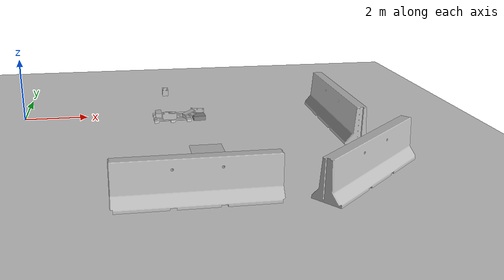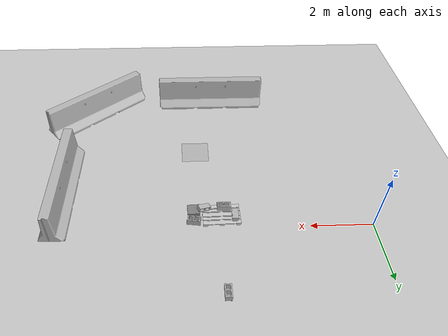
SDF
<sdf version="1.6">
 <world name="default">
  <model name="ground_plane">
   <static>1</static>
   <link name="link">
    <collision name="collision">
     <geometry><plane><normal>0 0 1</normal><size>100 100</size></plane></geometry>
     <surface>
      <contact><collide_bitmask>65535</collide_bitmask></contact>
      <friction><ode><mu>100</mu><mu2>50</mu2></ode></friction>
     </surface>
    </collision>
    <visual name="visual">
     <cast_shadows>0</cast_shadows>
     <geometry><plane><normal>0 0 1</normal><size>100 100</size></plane></geometry>
     <material>
      <script><uri>file://media/materials/scripts/gazebo.material</uri><name>Gazebo/Grey</name></script>
     </material>
    </visual>
   </link>
  </model>
  <model name="cinder_block_static_0">
   <link name="link">
    <inertial>
     <pose>0 0 0.1016 0 -0 0</pose>
     <mass>5</mass>
     <inertia>
      <ixx>0.028705</ixx>
      <ixy>0</ixy>
      <iyy>0.073708</iyy>
      <ixz>0</ixz>
      <iyz>0</iyz>
      <izz>0.06908</izz>
     </inertia>
    </inertial>
    <visual name="visual">
     <geometry><mesh><uri>model://cinder_block/meshes/cinder_block.dae</uri></mesh></geometry>
    </visual>
    <collision name="left">
     <pose>0 -0.08465 0.1016 0 -0 0</pose>
     <geometry><box><size>0.43495 0.0339 0.2032</size></box></geometry>
     <surface>
      <friction>
       <ode><mu>1</mu><mu2>1</mu2><fdir1>0 0 0</fdir1><slip1>0</slip1><slip2>0</slip2></ode>
       <torsional>
        <coefficient>1</coefficient>
        <patch_radius>0</patch_radius>
        <surface_radius>0</surface_radius>
        <use_patch_radius>1</use_patch_radius>
        <ode><slip>0</slip></ode>
       </torsional>
      </friction>
      <bounce><restitution_coefficient>0</restitution_coefficient><threshold>1e+06</threshold></bounce>
      <contact>
       <collide_without_contact>0</collide_without_contact>
       <collide_without_contact_bitmask>1</collide_without_contact_bitmask>
       <collide_bitmask>1</collide_bitmask>
       <ode>
        <soft_cfm>0</soft_cfm>
        <soft_erp>0.2</soft_erp>
        <kp>1e+13</kp>
        <kd>1</kd>
        <max_vel>0.1</max_vel>
        <min_depth>0.001</min_depth>
       </ode>
       <bullet>
        <split_impulse>1</split_impulse>
        <split_impulse_penetration_threshold>-0.01</split_impulse_penetration_threshold>
        <soft_cfm>0</soft_cfm>
        <soft_erp>0.2</soft_erp>
        <kp>1e+13</kp>
        <kd>1</kd>
       </bullet>
      </contact>
     </surface>
    </collision>
    <collision name="right">
     <pose>0 0.08465 0.1016 0 -0 0</pose>
     <geometry><box><size>0.43495 0.0339 0.2032</size></box></geometry>
     <surface>
      <friction>
       <ode><mu>1</mu><mu2>1</mu2><fdir1>0 0 0</fdir1><slip1>0</slip1><slip2>0</slip2></ode>
       <torsional>
        <coefficient>1</coefficient>
        <patch_radius>0</patch_radius>
        <surface_radius>0</surface_radius>
        <use_patch_radius>1</use_patch_radius>
        <ode><slip>0</slip></ode>
       </torsional>
      </friction>
      <bounce><restitution_coefficient>0</restitution_coefficient><threshold>1e+06</threshold></bounce>
      <contact>
       <collide_without_contact>0</collide_without_contact>
       <collide_without_contact_bitmask>1</collide_without_contact_bitmask>
       <collide_bitmask>1</collide_bitmask>
       <ode>
        <soft_cfm>0</soft_cfm>
        <soft_erp>0.2</soft_erp>
        <kp>1e+13</kp>
        <kd>1</kd>
        <max_vel>0.1</max_vel>
        <min_depth>0.001</min_depth>
       </ode>
       <bullet>
        <split_impulse>1</split_impulse>
        <split_impulse_penetration_threshold>-0.01</split_impulse_penetration_threshold>
        <soft_cfm>0</soft_cfm>
        <soft_erp>0.2</soft_erp>
        <kp>1e+13</kp>
        <kd>1</kd>
       </bullet>
      </contact>
     </surface>
    </collision>
    <collision name="front">
     <pose>0.18625 0 0.1016 0 -0 0</pose>
     <geometry><box><size>0.0339 0.1354 0.203</size></box></geometry>
     <surface>
      <friction>
       <ode><mu>1</mu><mu2>1</mu2><fdir1>0 0 0</fdir1><slip1>0</slip1><slip2>0</slip2></ode>
       <torsional>
        <coefficient>1</coefficient>
        <patch_radius>0</patch_radius>
        <surface_radius>0</surface_radius>
        <use_patch_radius>1</use_patch_radius>
        <ode><slip>0</slip></ode>
       </torsional>
      </friction>
      <bounce><restitution_coefficient>0</restitution_coefficient><threshold>1e+06</threshold></bounce>
      <contact>
       <collide_without_contact>0</collide_without_contact>
       <collide_without_contact_bitmask>1</collide_without_contact_bitmask>
       <collide_bitmask>1</collide_bitmask>
       <ode>
        <soft_cfm>0</soft_cfm>
        <soft_erp>0.2</soft_erp>
        <kp>1e+13</kp>
        <kd>1</kd>
        <max_vel>0.1</max_vel>
        <min_depth>0.001</min_depth>
       </ode>
       <bullet>
        <split_impulse>1</split_impulse>
        <split_impulse_penetration_threshold>-0.01</split_impulse_penetration_threshold>
        <soft_cfm>0</soft_cfm>
        <soft_erp>0.2</soft_erp>
        <kp>1e+13</kp>
        <kd>1</kd>
       </bullet>
      </contact>
     </surface>
    </collision>
    <collision name="middle">
     <pose>0 0 0.1016 0 -0 0</pose>
     <geometry><box><size>0.0339 0.1354 0.203</size></box></geometry>
     <surface>
      <friction>
       <ode><mu>1</mu><mu2>1</mu2><fdir1>0 0 0</fdir1><slip1>0</slip1><slip2>0</slip2></ode>
       <torsional>
        <coefficient>1</coefficient>
        <patch_radius>0</patch_radius>
        <surface_radius>0</surface_radius>
        <use_patch_radius>1</use_patch_radius>
        <ode><slip>0</slip></ode>
       </torsional>
      </friction>
      <bounce><restitution_coefficient>0</restitution_coefficient><threshold>1e+06</threshold></bounce>
      <contact>
       <collide_without_contact>0</collide_without_contact>
       <collide_without_contact_bitmask>1</collide_without_contact_bitmask>
       <collide_bitmask>1</collide_bitmask>
       <ode>
        <soft_cfm>0</soft_cfm>
        <soft_erp>0.2</soft_erp>
        <kp>1e+13</kp>
        <kd>1</kd>
        <max_vel>0.1</max_vel>
        <min_depth>0.001</min_depth>
       </ode>
       <bullet>
        <split_impulse>1</split_impulse>
        <split_impulse_penetration_threshold>-0.01</split_impulse_penetration_threshold>
        <soft_cfm>0</soft_cfm>
        <soft_erp>0.2</soft_erp>
        <kp>1e+13</kp>
        <kd>1</kd>
       </bullet>
      </contact>
     </surface>
    </collision>
    <collision name="back">
     <pose>-0.18625 0 0.1016 0 -0 0</pose>
     <geometry><box><size>0.0339 0.1354 0.203</size></box></geometry>
     <surface>
      <friction>
       <ode><mu>1</mu><mu2>1</mu2><fdir1>0 0 0</fdir1><slip1>0</slip1><slip2>0</slip2></ode>
       <torsional>
        <coefficient>1</coefficient>
        <patch_radius>0</patch_radius>
        <surface_radius>0</surface_radius>
        <use_patch_radius>1</use_patch_radius>
        <ode><slip>0</slip></ode>
       </torsional>
      </friction>
      <bounce><restitution_coefficient>0</restitution_coefficient><threshold>1e+06</threshold></bounce>
      <contact>
       <collide_without_contact>0</collide_without_contact>
       <collide_without_contact_bitmask>1</collide_without_contact_bitmask>
       <collide_bitmask>1</collide_bitmask>
       <ode>
        <soft_cfm>0</soft_cfm>
        <soft_erp>0.2</soft_erp>
        <kp>1e+13</kp>
        <kd>1</kd>
        <max_vel>0.1</max_vel>
        <min_depth>0.001</min_depth>
       </ode>
       <bullet>
        <split_impulse>1</split_impulse>
        <split_impulse_penetration_threshold>-0.01</split_impulse_penetration_threshold>
        <soft_cfm>0</soft_cfm>
        <soft_erp>0.2</soft_erp>
        <kp>1e+13</kp>
        <kd>1</kd>
       </bullet>
      </contact>
     </surface>
    </collision>
   </link>
   <static>1</static>
   <pose>4.77224 2.27227 0 0 -0 1.55672</pose>
  </model>
  <model name="checkerboard_plane">
   <static>1</static>
   <link name="link">
    <visual name="visual">
     <geometry>
      <mesh><scale>0.48 0.48 0.48</scale><uri>model://checkerboard_plane/meshes/checkerboard_plane.dae</uri></mesh>
     </geometry>
    </visual>
   </link>
   <pose>5.51191 -3.50404 0.005577 0 -0 0</pose>
  </model>
  <model name="euro_pallet_static_0">
   <link name="link">
    <inertial>
     <mass>20</mass>
     <inertia><ixx>2.43</ixx><ixy>0</ixy><ixz>0</ixz><iyy>1.1</iyy><iyz>0</iyz><izz>3.47</izz></inertia>
    </inertial>
    <visual name="visual">
     <pose>0 0 0.05 0 -0 0</pose>
     <geometry><mesh><uri>model://euro_pallet/meshes/pallet.dae</uri><scale>0.1 0.1 0.1</scale></mesh></geometry>
    </visual>
    <collision name="collision">
     <pose>0 0 0.05 0 -0 0</pose>
     <geometry>
      <mesh><uri>~/.gazebo/models/euro_pallet/meshes/pallet.dae</uri><scale>0.1 0.1 0.1</scale></mesh>
     </geometry>
     <surface>
      <friction>
       <ode><mu>1</mu><mu2>1</mu2><fdir1>0 0 0</fdir1><slip1>0</slip1><slip2>0</slip2></ode>
       <torsional>
        <coefficient>1</coefficient>
        <patch_radius>0</patch_radius>
        <surface_radius>0</surface_radius>
        <use_patch_radius>1</use_patch_radius>
        <ode><slip>0</slip></ode>
       </torsional>
      </friction>
      <bounce><restitution_coefficient>0</restitution_coefficient><threshold>1e+06</threshold></bounce>
      <contact>
       <collide_without_contact>0</collide_without_contact>
       <collide_without_contact_bitmask>1</collide_without_contact_bitmask>
       <collide_bitmask>1</collide_bitmask>
       <ode>
        <soft_cfm>0</soft_cfm>
        <soft_erp>0.2</soft_erp>
        <kp>1e+13</kp>
        <kd>1</kd>
        <max_vel>0.01</max_vel>
        <min_depth>0</min_depth>
       </ode>
       <bullet>
        <split_impulse>1</split_impulse>
        <split_impulse_penetration_threshold>-0.01</split_impulse_penetration_threshold>
        <soft_cfm>0</soft_cfm>
        <soft_erp>0.2</soft_erp>
        <kp>1e+13</kp>
        <kd>1</kd>
       </bullet>
      </contact>
     </surface>
    </collision>
   </link>
   <static>1</static>
   <pose>4.76822 -0.50039 0 0 -0 1.59773</pose>
  </model>
  <model name="cinder_block_wide_static_1">
   <link name="link">
    <inertial>
     <pose>0 0 0.071438 0 -0 0</pose>
     <mass>5</mass>
     <inertia>
      <ixx>0.0681466</ixx>
      <ixy>0</ixy>
      <iyy>0.0681466</iyy>
      <ixz>0</ixz>
      <iyz>0</iyz>
      <izz>0.124808</izz>
     </inertia>
    </inertial>
    <visual name="visual">
     <geometry><mesh><uri>model://cinder_block_wide/meshes/cinder_block_wide.dae</uri></mesh></geometry>
    </visual>
    <collision name="top">
     <pose>0 0 0.130175 0 -0 0</pose>
     <geometry><box><size>0.387354 0.387354 0.0254</size></box></geometry>
     <surface>
      <friction>
       <ode><mu>1</mu><mu2>1</mu2><fdir1>0 0 0</fdir1><slip1>0</slip1><slip2>0</slip2></ode>
       <torsional>
        <coefficient>1</coefficient>
        <patch_radius>0</patch_radius>
        <surface_radius>0</surface_radius>
        <use_patch_radius>1</use_patch_radius>
        <ode><slip>0</slip></ode>
       </torsional>
      </friction>
      <bounce><restitution_coefficient>0</restitution_coefficient><threshold>1e+06</threshold></bounce>
      <contact>
       <collide_without_contact>0</collide_without_contact>
       <collide_without_contact_bitmask>1</collide_without_contact_bitmask>
       <collide_bitmask>1</collide_bitmask>
       <ode>
        <soft_cfm>0</soft_cfm>
        <soft_erp>0.2</soft_erp>
        <kp>1e+13</kp>
        <kd>1</kd>
        <max_vel>0.1</max_vel>
        <min_depth>0.001</min_depth>
       </ode>
       <bullet>
        <split_impulse>1</split_impulse>
        <split_impulse_penetration_threshold>-0.01</split_impulse_penetration_threshold>
        <soft_cfm>0</soft_cfm>
        <soft_erp>0.2</soft_erp>
        <kp>1e+13</kp>
        <kd>1</kd>
       </bullet>
      </contact>
     </surface>
    </collision>
    <collision name="bottom">
     <pose>0 0 0.0127 0 -0 0</pose>
     <geometry><box><size>0.387354 0.387354 0.0254</size></box></geometry>
     <surface>
      <friction>
       <ode><mu>1</mu><mu2>1</mu2><fdir1>0 0 0</fdir1><slip1>0</slip1><slip2>0</slip2></ode>
       <torsional>
        <coefficient>1</coefficient>
        <patch_radius>0</patch_radius>
        <surface_radius>0</surface_radius>
        <use_patch_radius>1</use_patch_radius>
        <ode><slip>0</slip></ode>
       </torsional>
      </friction>
      <bounce><restitution_coefficient>0</restitution_coefficient><threshold>1e+06</threshold></bounce>
      <contact>
       <collide_without_contact>0</collide_without_contact>
       <collide_without_contact_bitmask>1</collide_without_contact_bitmask>
       <collide_bitmask>1</collide_bitmask>
       <ode>
        <soft_cfm>0</soft_cfm>
        <soft_erp>0.2</soft_erp>
        <kp>1e+13</kp>
        <kd>1</kd>
        <max_vel>0.1</max_vel>
        <min_depth>0.001</min_depth>
       </ode>
       <bullet>
        <split_impulse>1</split_impulse>
        <split_impulse_penetration_threshold>-0.01</split_impulse_penetration_threshold>
        <soft_cfm>0</soft_cfm>
        <soft_erp>0.2</soft_erp>
        <kp>1e+13</kp>
        <kd>1</kd>
       </bullet>
      </contact>
     </surface>
    </collision>
    <collision name="left">
     <pose>0 -0.183355 0.071438 0 -0 0</pose>
     <geometry><box><size>0.387354 0.020643 0.092075</size></box></geometry>
     <surface>
      <friction>
       <ode><mu>1</mu><mu2>1</mu2><fdir1>0 0 0</fdir1><slip1>0</slip1><slip2>0</slip2></ode>
       <torsional>
        <coefficient>1</coefficient>
        <patch_radius>0</patch_radius>
        <surface_radius>0</surface_radius>
        <use_patch_radius>1</use_patch_radius>
        <ode><slip>0</slip></ode>
       </torsional>
      </friction>
      <bounce><restitution_coefficient>0</restitution_coefficient><threshold>1e+06</threshold></bounce>
      <contact>
       <collide_without_contact>0</collide_without_contact>
       <collide_without_contact_bitmask>1</collide_without_contact_bitmask>
       <collide_bitmask>1</collide_bitmask>
       <ode>
        <soft_cfm>0</soft_cfm>
        <soft_erp>0.2</soft_erp>
        <kp>1e+13</kp>
        <kd>1</kd>
        <max_vel>0.1</max_vel>
        <min_depth>0.001</min_depth>
       </ode>
       <bullet>
        <split_impulse>1</split_impulse>
        <split_impulse_penetration_threshold>-0.01</split_impulse_penetration_threshold>
        <soft_cfm>0</soft_cfm>
        <soft_erp>0.2</soft_erp>
        <kp>1e+13</kp>
        <kd>1</kd>
       </bullet>
      </contact>
     </surface>
    </collision>
    <collision name="right">
     <pose>0 0.183355 0.071438 0 -0 0</pose>
     <geometry><box><size>0.387354 0.020643 0.092075</size></box></geometry>
     <surface>
      <friction>
       <ode><mu>1</mu><mu2>1</mu2><fdir1>0 0 0</fdir1><slip1>0</slip1><slip2>0</slip2></ode>
       <torsional>
        <coefficient>1</coefficient>
        <patch_radius>0</patch_radius>
        <surface_radius>0</surface_radius>
        <use_patch_radius>1</use_patch_radius>
        <ode><slip>0</slip></ode>
       </torsional>
      </friction>
      <bounce><restitution_coefficient>0</restitution_coefficient><threshold>1e+06</threshold></bounce>
      <contact>
       <collide_without_contact>0</collide_without_contact>
       <collide_without_contact_bitmask>1</collide_without_contact_bitmask>
       <collide_bitmask>1</collide_bitmask>
       <ode>
        <soft_cfm>0</soft_cfm>
        <soft_erp>0.2</soft_erp>
        <kp>1e+13</kp>
        <kd>1</kd>
        <max_vel>0.1</max_vel>
        <min_depth>0.001</min_depth>
       </ode>
       <bullet>
        <split_impulse>1</split_impulse>
        <split_impulse_penetration_threshold>-0.01</split_impulse_penetration_threshold>
        <soft_cfm>0</soft_cfm>
        <soft_erp>0.2</soft_erp>
        <kp>1e+13</kp>
        <kd>1</kd>
       </bullet>
      </contact>
     </surface>
    </collision>
    <collision name="middle">
     <pose>0 0 0.071438 0 -0 0</pose>
     <geometry><box><size>0.387354 0.0254 0.092075</size></box></geometry>
     <surface>
      <friction>
       <ode><mu>1</mu><mu2>1</mu2><fdir1>0 0 0</fdir1><slip1>0</slip1><slip2>0</slip2></ode>
       <torsional>
        <coefficient>1</coefficient>
        <patch_radius>0</patch_radius>
        <surface_radius>0</surface_radius>
        <use_patch_radius>1</use_patch_radius>
        <ode><slip>0</slip></ode>
       </torsional>
      </friction>
      <bounce><restitution_coefficient>0</restitution_coefficient><threshold>1e+06</threshold></bounce>
      <contact>
       <collide_without_contact>0</collide_without_contact>
       <collide_without_contact_bitmask>1</collide_without_contact_bitmask>
       <collide_bitmask>1</collide_bitmask>
       <ode>
        <soft_cfm>0</soft_cfm>
        <soft_erp>0.2</soft_erp>
        <kp>1e+13</kp>
        <kd>1</kd>
        <max_vel>0.1</max_vel>
        <min_depth>0.001</min_depth>
       </ode>
       <bullet>
        <split_impulse>1</split_impulse>
        <split_impulse_penetration_threshold>-0.01</split_impulse_penetration_threshold>
        <soft_cfm>0</soft_cfm>
        <soft_erp>0.2</soft_erp>
        <kp>1e+13</kp>
        <kd>1</kd>
       </bullet>
      </contact>
     </surface>
    </collision>
   </link>
   <static>1</static>
   <pose>5.64827 -0.671428 0 0 -0 0.049763</pose>
  </model>
  <model name="cinder_block_static_1">
   <link name="link">
    <inertial>
     <pose>0 0 0.1016 0 -0 0</pose>
     <mass>5</mass>
     <inertia>
      <ixx>0.028705</ixx>
      <ixy>0</ixy>
      <iyy>0.073708</iyy>
      <ixz>0</ixz>
      <iyz>0</iyz>
      <izz>0.06908</izz>
     </inertia>
    </inertial>
    <visual name="visual">
     <geometry><mesh><uri>model://cinder_block/meshes/cinder_block.dae</uri></mesh></geometry>
    </visual>
    <collision name="left">
     <pose>0 -0.08465 0.1016 0 -0 0</pose>
     <geometry><box><size>0.43495 0.0339 0.2032</size></box></geometry>
     <surface>
      <friction>
       <ode><mu>1</mu><mu2>1</mu2><fdir1>0 0 0</fdir1><slip1>0</slip1><slip2>0</slip2></ode>
       <torsional>
        <coefficient>1</coefficient>
        <patch_radius>0</patch_radius>
        <surface_radius>0</surface_radius>
        <use_patch_radius>1</use_patch_radius>
        <ode><slip>0</slip></ode>
       </torsional>
      </friction>
      <bounce><restitution_coefficient>0</restitution_coefficient><threshold>1e+06</threshold></bounce>
      <contact>
       <collide_without_contact>0</collide_without_contact>
       <collide_without_contact_bitmask>1</collide_without_contact_bitmask>
       <collide_bitmask>1</collide_bitmask>
       <ode>
        <soft_cfm>0</soft_cfm>
        <soft_erp>0.2</soft_erp>
        <kp>1e+13</kp>
        <kd>1</kd>
        <max_vel>0.1</max_vel>
        <min_depth>0.001</min_depth>
       </ode>
       <bullet>
        <split_impulse>1</split_impulse>
        <split_impulse_penetration_threshold>-0.01</split_impulse_penetration_threshold>
        <soft_cfm>0</soft_cfm>
        <soft_erp>0.2</soft_erp>
        <kp>1e+13</kp>
        <kd>1</kd>
       </bullet>
      </contact>
     </surface>
    </collision>
    <collision name="right">
     <pose>0 0.08465 0.1016 0 -0 0</pose>
     <geometry><box><size>0.43495 0.0339 0.2032</size></box></geometry>
     <surface>
      <friction>
       <ode><mu>1</mu><mu2>1</mu2><fdir1>0 0 0</fdir1><slip1>0</slip1><slip2>0</slip2></ode>
       <torsional>
        <coefficient>1</coefficient>
        <patch_radius>0</patch_radius>
        <surface_radius>0</surface_radius>
        <use_patch_radius>1</use_patch_radius>
        <ode><slip>0</slip></ode>
       </torsional>
      </friction>
      <bounce><restitution_coefficient>0</restitution_coefficient><threshold>1e+06</threshold></bounce>
      <contact>
       <collide_without_contact>0</collide_without_contact>
       <collide_without_contact_bitmask>1</collide_without_contact_bitmask>
       <collide_bitmask>1</collide_bitmask>
       <ode>
        <soft_cfm>0</soft_cfm>
        <soft_erp>0.2</soft_erp>
        <kp>1e+13</kp>
        <kd>1</kd>
        <max_vel>0.1</max_vel>
        <min_depth>0.001</min_depth>
       </ode>
       <bullet>
        <split_impulse>1</split_impulse>
        <split_impulse_penetration_threshold>-0.01</split_impulse_penetration_threshold>
        <soft_cfm>0</soft_cfm>
        <soft_erp>0.2</soft_erp>
        <kp>1e+13</kp>
        <kd>1</kd>
       </bullet>
      </contact>
     </surface>
    </collision>
    <collision name="front">
     <pose>0.18625 0 0.1016 0 -0 0</pose>
     <geometry><box><size>0.0339 0.1354 0.203</size></box></geometry>
     <surface>
      <friction>
       <ode><mu>1</mu><mu2>1</mu2><fdir1>0 0 0</fdir1><slip1>0</slip1><slip2>0</slip2></ode>
       <torsional>
        <coefficient>1</coefficient>
        <patch_radius>0</patch_radius>
        <surface_radius>0</surface_radius>
        <use_patch_radius>1</use_patch_radius>
        <ode><slip>0</slip></ode>
       </torsional>
      </friction>
      <bounce><restitution_coefficient>0</restitution_coefficient><threshold>1e+06</threshold></bounce>
      <contact>
       <collide_without_contact>0</collide_without_contact>
       <collide_without_contact_bitmask>1</collide_without_contact_bitmask>
       <collide_bitmask>1</collide_bitmask>
       <ode>
        <soft_cfm>0</soft_cfm>
        <soft_erp>0.2</soft_erp>
        <kp>1e+13</kp>
        <kd>1</kd>
        <max_vel>0.1</max_vel>
        <min_depth>0.001</min_depth>
       </ode>
       <bullet>
        <split_impulse>1</split_impulse>
        <split_impulse_penetration_threshold>-0.01</split_impulse_penetration_threshold>
        <soft_cfm>0</soft_cfm>
        <soft_erp>0.2</soft_erp>
        <kp>1e+13</kp>
        <kd>1</kd>
       </bullet>
      </contact>
     </surface>
    </collision>
    <collision name="middle">
     <pose>0 0 0.1016 0 -0 0</pose>
     <geometry><box><size>0.0339 0.1354 0.203</size></box></geometry>
     <surface>
      <friction>
       <ode><mu>1</mu><mu2>1</mu2><fdir1>0 0 0</fdir1><slip1>0</slip1><slip2>0</slip2></ode>
       <torsional>
        <coefficient>1</coefficient>
        <patch_radius>0</patch_radius>
        <surface_radius>0</surface_radius>
        <use_patch_radius>1</use_patch_radius>
        <ode><slip>0</slip></ode>
       </torsional>
      </friction>
      <bounce><restitution_coefficient>0</restitution_coefficient><threshold>1e+06</threshold></bounce>
      <contact>
       <collide_without_contact>0</collide_without_contact>
       <collide_without_contact_bitmask>1</collide_without_contact_bitmask>
       <collide_bitmask>1</collide_bitmask>
       <ode>
        <soft_cfm>0</soft_cfm>
        <soft_erp>0.2</soft_erp>
        <kp>1e+13</kp>
        <kd>1</kd>
        <max_vel>0.1</max_vel>
        <min_depth>0.001</min_depth>
       </ode>
       <bullet>
        <split_impulse>1</split_impulse>
        <split_impulse_penetration_threshold>-0.01</split_impulse_penetration_threshold>
        <soft_cfm>0</soft_cfm>
        <soft_erp>0.2</soft_erp>
        <kp>1e+13</kp>
        <kd>1</kd>
       </bullet>
      </contact>
     </surface>
    </collision>
    <collision name="back">
     <pose>-0.18625 0 0.1016 0 -0 0</pose>
     <geometry><box><size>0.0339 0.1354 0.203</size></box></geometry>
     <surface>
      <friction>
       <ode><mu>1</mu><mu2>1</mu2><fdir1>0 0 0</fdir1><slip1>0</slip1><slip2>0</slip2></ode>
       <torsional>
        <coefficient>1</coefficient>
        <patch_radius>0</patch_radius>
        <surface_radius>0</surface_radius>
        <use_patch_radius>1</use_patch_radius>
        <ode><slip>0</slip></ode>
       </torsional>
      </friction>
      <bounce><restitution_coefficient>0</restitution_coefficient><threshold>1e+06</threshold></bounce>
      <contact>
       <collide_without_contact>0</collide_without_contact>
       <collide_without_contact_bitmask>1</collide_without_contact_bitmask>
       <collide_bitmask>1</collide_bitmask>
       <ode>
        <soft_cfm>0</soft_cfm>
        <soft_erp>0.2</soft_erp>
        <kp>1e+13</kp>
        <kd>1</kd>
        <max_vel>0.1</max_vel>
        <min_depth>0.001</min_depth>
       </ode>
       <bullet>
        <split_impulse>1</split_impulse>
        <split_impulse_penetration_threshold>-0.01</split_impulse_penetration_threshold>
        <soft_cfm>0</soft_cfm>
        <soft_erp>0.2</soft_erp>
        <kp>1e+13</kp>
        <kd>1</kd>
       </bullet>
      </contact>
     </surface>
    </collision>
   </link>
   <static>1</static>
   <pose>5.64231 -0.251046 0 0 0 -0.147625</pose>
  </model>
  <model name="cinder_block_2_static_2">
   <link name="link">
    <inertial>
     <pose>0 0 0.071438 0 -0 0</pose>
     <mass>5</mass>
     <inertia>
      <ixx>0.06908</ixx>
      <ixy>0</ixy>
      <iyy>0.028705</iyy>
      <ixz>0</ixz>
      <iyz>0</iyz>
      <izz>0.073708</izz>
     </inertia>
    </inertial>
    <visual name="visual">
     <geometry><mesh><uri>model://cinder_block_2/meshes/cinder_block.dae</uri></mesh></geometry>
    </visual>
    <collision name="top">
     <pose>0 0 0.130175 0 -0 0</pose>
     <geometry><box><size>0.19368 0.396875 0.0254</size></box></geometry>
     <surface>
      <friction>
       <ode><mu>1</mu><mu2>1</mu2><fdir1>0 0 0</fdir1><slip1>0</slip1><slip2>0</slip2></ode>
       <torsional>
        <coefficient>1</coefficient>
        <patch_radius>0</patch_radius>
        <surface_radius>0</surface_radius>
        <use_patch_radius>1</use_patch_radius>
        <ode><slip>0</slip></ode>
       </torsional>
      </friction>
      <bounce><restitution_coefficient>0</restitution_coefficient><threshold>1e+06</threshold></bounce>
      <contact>
       <collide_without_contact>0</collide_without_contact>
       <collide_without_contact_bitmask>1</collide_without_contact_bitmask>
       <collide_bitmask>1</collide_bitmask>
       <ode>
        <soft_cfm>0</soft_cfm>
        <soft_erp>0.2</soft_erp>
        <kp>1e+13</kp>
        <kd>1</kd>
        <max_vel>0.1</max_vel>
        <min_depth>0.001</min_depth>
       </ode>
       <bullet>
        <split_impulse>1</split_impulse>
        <split_impulse_penetration_threshold>-0.01</split_impulse_penetration_threshold>
        <soft_cfm>0</soft_cfm>
        <soft_erp>0.2</soft_erp>
        <kp>1e+13</kp>
        <kd>1</kd>
       </bullet>
      </contact>
     </surface>
    </collision>
    <collision name="bottom">
     <pose>0 0 0.0127 0 -0 0</pose>
     <geometry><box><size>0.19368 0.396875 0.0254</size></box></geometry>
     <surface>
      <friction>
       <ode><mu>1</mu><mu2>1</mu2><fdir1>0 0 0</fdir1><slip1>0</slip1><slip2>0</slip2></ode>
       <torsional>
        <coefficient>1</coefficient>
        <patch_radius>0</patch_radius>
        <surface_radius>0</surface_radius>
        <use_patch_radius>1</use_patch_radius>
        <ode><slip>0</slip></ode>
       </torsional>
      </friction>
      <bounce><restitution_coefficient>0</restitution_coefficient><threshold>1e+06</threshold></bounce>
      <contact>
       <collide_without_contact>0</collide_without_contact>
       <collide_without_contact_bitmask>1</collide_without_contact_bitmask>
       <collide_bitmask>1</collide_bitmask>
       <ode>
        <soft_cfm>0</soft_cfm>
        <soft_erp>0.2</soft_erp>
        <kp>1e+13</kp>
        <kd>1</kd>
        <max_vel>0.1</max_vel>
        <min_depth>0.001</min_depth>
       </ode>
       <bullet>
        <split_impulse>1</split_impulse>
        <split_impulse_penetration_threshold>-0.01</split_impulse_penetration_threshold>
        <soft_cfm>0</soft_cfm>
        <soft_erp>0.2</soft_erp>
        <kp>1e+13</kp>
        <kd>1</kd>
       </bullet>
      </contact>
     </surface>
    </collision>
    <collision name="left">
     <pose>0 -0.185738 0.071438 0 -0 0</pose>
     <geometry><box><size>0.19368 0.0254 0.092075</size></box></geometry>
     <surface>
      <friction>
       <ode><mu>1</mu><mu2>1</mu2><fdir1>0 0 0</fdir1><slip1>0</slip1><slip2>0</slip2></ode>
       <torsional>
        <coefficient>1</coefficient>
        <patch_radius>0</patch_radius>
        <surface_radius>0</surface_radius>
        <use_patch_radius>1</use_patch_radius>
        <ode><slip>0</slip></ode>
       </torsional>
      </friction>
      <bounce><restitution_coefficient>0</restitution_coefficient><threshold>1e+06</threshold></bounce>
      <contact>
       <collide_without_contact>0</collide_without_contact>
       <collide_without_contact_bitmask>1</collide_without_contact_bitmask>
       <collide_bitmask>1</collide_bitmask>
       <ode>
        <soft_cfm>0</soft_cfm>
        <soft_erp>0.2</soft_erp>
        <kp>1e+13</kp>
        <kd>1</kd>
        <max_vel>0.1</max_vel>
        <min_depth>0.001</min_depth>
       </ode>
       <bullet>
        <split_impulse>1</split_impulse>
        <split_impulse_penetration_threshold>-0.01</split_impulse_penetration_threshold>
        <soft_cfm>0</soft_cfm>
        <soft_erp>0.2</soft_erp>
        <kp>1e+13</kp>
        <kd>1</kd>
       </bullet>
      </contact>
     </surface>
    </collision>
    <collision name="middle">
     <pose>0 0 0.071438 0 -0 0</pose>
     <geometry><box><size>0.19368 0.0254 0.092075</size></box></geometry>
     <surface>
      <friction>
       <ode><mu>1</mu><mu2>1</mu2><fdir1>0 0 0</fdir1><slip1>0</slip1><slip2>0</slip2></ode>
       <torsional>
        <coefficient>1</coefficient>
        <patch_radius>0</patch_radius>
        <surface_radius>0</surface_radius>
        <use_patch_radius>1</use_patch_radius>
        <ode><slip>0</slip></ode>
       </torsional>
      </friction>
      <bounce><restitution_coefficient>0</restitution_coefficient><threshold>1e+06</threshold></bounce>
      <contact>
       <collide_without_contact>0</collide_without_contact>
       <collide_without_contact_bitmask>1</collide_without_contact_bitmask>
       <collide_bitmask>1</collide_bitmask>
       <ode>
        <soft_cfm>0</soft_cfm>
        <soft_erp>0.2</soft_erp>
        <kp>1e+13</kp>
        <kd>1</kd>
        <max_vel>0.1</max_vel>
        <min_depth>0.001</min_depth>
       </ode>
       <bullet>
        <split_impulse>1</split_impulse>
        <split_impulse_penetration_threshold>-0.01</split_impulse_penetration_threshold>
        <soft_cfm>0</soft_cfm>
        <soft_erp>0.2</soft_erp>
        <kp>1e+13</kp>
        <kd>1</kd>
       </bullet>
      </contact>
     </surface>
    </collision>
    <collision name="right">
     <pose>0 0.185738 0.071438 0 -0 0</pose>
     <geometry><box><size>0.19368 0.0254 0.092075</size></box></geometry>
     <surface>
      <friction>
       <ode><mu>1</mu><mu2>1</mu2><fdir1>0 0 0</fdir1><slip1>0</slip1><slip2>0</slip2></ode>
       <torsional>
        <coefficient>1</coefficient>
        <patch_radius>0</patch_radius>
        <surface_radius>0</surface_radius>
        <use_patch_radius>1</use_patch_radius>
        <ode><slip>0</slip></ode>
       </torsional>
      </friction>
      <bounce><restitution_coefficient>0</restitution_coefficient><threshold>1e+06</threshold></bounce>
      <contact>
       <collide_without_contact>0</collide_without_contact>
       <collide_without_contact_bitmask>1</collide_without_contact_bitmask>
       <collide_bitmask>1</collide_bitmask>
       <ode>
        <soft_cfm>0</soft_cfm>
        <soft_erp>0.2</soft_erp>
        <kp>1e+13</kp>
        <kd>1</kd>
        <max_vel>0.1</max_vel>
        <min_depth>0.001</min_depth>
       </ode>
       <bullet>
        <split_impulse>1</split_impulse>
        <split_impulse_penetration_threshold>-0.01</split_impulse_penetration_threshold>
        <soft_cfm>0</soft_cfm>
        <soft_erp>0.2</soft_erp>
        <kp>1e+13</kp>
        <kd>1</kd>
       </bullet>
      </contact>
     </surface>
    </collision>
   </link>
   <static>1</static>
   <pose>4.33436 -0.410486 0.072243 0 -0 0</pose>
  </model>
  <model name="cinder_block_static_2">
   <link name="link">
    <inertial>
     <pose>0 0 0.1016 0 -0 0</pose>
     <mass>5</mass>
     <inertia>
      <ixx>0.028705</ixx>
      <ixy>0</ixy>
      <iyy>0.073708</iyy>
      <ixz>0</ixz>
      <iyz>0</iyz>
      <izz>0.06908</izz>
     </inertia>
    </inertial>
    <visual name="visual">
     <geometry><mesh><uri>model://cinder_block/meshes/cinder_block.dae</uri></mesh></geometry>
    </visual>
    <collision name="left">
     <pose>0 -0.08465 0.1016 0 -0 0</pose>
     <geometry><box><size>0.43495 0.0339 0.2032</size></box></geometry>
     <surface>
      <friction>
       <ode><mu>1</mu><mu2>1</mu2><fdir1>0 0 0</fdir1><slip1>0</slip1><slip2>0</slip2></ode>
       <torsional>
        <coefficient>1</coefficient>
        <patch_radius>0</patch_radius>
        <surface_radius>0</surface_radius>
        <use_patch_radius>1</use_patch_radius>
        <ode><slip>0</slip></ode>
       </torsional>
      </friction>
      <bounce><restitution_coefficient>0</restitution_coefficient><threshold>1e+06</threshold></bounce>
      <contact>
       <collide_without_contact>0</collide_without_contact>
       <collide_without_contact_bitmask>1</collide_without_contact_bitmask>
       <collide_bitmask>1</collide_bitmask>
       <ode>
        <soft_cfm>0</soft_cfm>
        <soft_erp>0.2</soft_erp>
        <kp>1e+13</kp>
        <kd>1</kd>
        <max_vel>0.1</max_vel>
        <min_depth>0.001</min_depth>
       </ode>
       <bullet>
        <split_impulse>1</split_impulse>
        <split_impulse_penetration_threshold>-0.01</split_impulse_penetration_threshold>
        <soft_cfm>0</soft_cfm>
        <soft_erp>0.2</soft_erp>
        <kp>1e+13</kp>
        <kd>1</kd>
       </bullet>
      </contact>
     </surface>
    </collision>
    <collision name="right">
     <pose>0 0.08465 0.1016 0 -0 0</pose>
     <geometry><box><size>0.43495 0.0339 0.2032</size></box></geometry>
     <surface>
      <friction>
       <ode><mu>1</mu><mu2>1</mu2><fdir1>0 0 0</fdir1><slip1>0</slip1><slip2>0</slip2></ode>
       <torsional>
        <coefficient>1</coefficient>
        <patch_radius>0</patch_radius>
        <surface_radius>0</surface_radius>
        <use_patch_radius>1</use_patch_radius>
        <ode><slip>0</slip></ode>
       </torsional>
      </friction>
      <bounce><restitution_coefficient>0</restitution_coefficient><threshold>1e+06</threshold></bounce>
      <contact>
       <collide_without_contact>0</collide_without_contact>
       <collide_without_contact_bitmask>1</collide_without_contact_bitmask>
       <collide_bitmask>1</collide_bitmask>
       <ode>
        <soft_cfm>0</soft_cfm>
        <soft_erp>0.2</soft_erp>
        <kp>1e+13</kp>
        <kd>1</kd>
        <max_vel>0.1</max_vel>
        <min_depth>0.001</min_depth>
       </ode>
       <bullet>
        <split_impulse>1</split_impulse>
        <split_impulse_penetration_threshold>-0.01</split_impulse_penetration_threshold>
        <soft_cfm>0</soft_cfm>
        <soft_erp>0.2</soft_erp>
        <kp>1e+13</kp>
        <kd>1</kd>
       </bullet>
      </contact>
     </surface>
    </collision>
    <collision name="front">
     <pose>0.18625 0 0.1016 0 -0 0</pose>
     <geometry><box><size>0.0339 0.1354 0.203</size></box></geometry>
     <surface>
      <friction>
       <ode><mu>1</mu><mu2>1</mu2><fdir1>0 0 0</fdir1><slip1>0</slip1><slip2>0</slip2></ode>
       <torsional>
        <coefficient>1</coefficient>
        <patch_radius>0</patch_radius>
        <surface_radius>0</surface_radius>
        <use_patch_radius>1</use_patch_radius>
        <ode><slip>0</slip></ode>
       </torsional>
      </friction>
      <bounce><restitution_coefficient>0</restitution_coefficient><threshold>1e+06</threshold></bounce>
      <contact>
       <collide_without_contact>0</collide_without_contact>
       <collide_without_contact_bitmask>1</collide_without_contact_bitmask>
       <collide_bitmask>1</collide_bitmask>
       <ode>
        <soft_cfm>0</soft_cfm>
        <soft_erp>0.2</soft_erp>
        <kp>1e+13</kp>
        <kd>1</kd>
        <max_vel>0.1</max_vel>
        <min_depth>0.001</min_depth>
       </ode>
       <bullet>
        <split_impulse>1</split_impulse>
        <split_impulse_penetration_threshold>-0.01</split_impulse_penetration_threshold>
        <soft_cfm>0</soft_cfm>
        <soft_erp>0.2</soft_erp>
        <kp>1e+13</kp>
        <kd>1</kd>
       </bullet>
      </contact>
     </surface>
    </collision>
    <collision name="middle">
     <pose>0 0 0.1016 0 -0 0</pose>
     <geometry><box><size>0.0339 0.1354 0.203</size></box></geometry>
     <surface>
      <friction>
       <ode><mu>1</mu><mu2>1</mu2><fdir1>0 0 0</fdir1><slip1>0</slip1><slip2>0</slip2></ode>
       <torsional>
        <coefficient>1</coefficient>
        <patch_radius>0</patch_radius>
        <surface_radius>0</surface_radius>
        <use_patch_radius>1</use_patch_radius>
        <ode><slip>0</slip></ode>
       </torsional>
      </friction>
      <bounce><restitution_coefficient>0</restitution_coefficient><threshold>1e+06</threshold></bounce>
      <contact>
       <collide_without_contact>0</collide_without_contact>
       <collide_without_contact_bitmask>1</collide_without_contact_bitmask>
       <collide_bitmask>1</collide_bitmask>
       <ode>
        <soft_cfm>0</soft_cfm>
        <soft_erp>0.2</soft_erp>
        <kp>1e+13</kp>
        <kd>1</kd>
        <max_vel>0.1</max_vel>
        <min_depth>0.001</min_depth>
       </ode>
       <bullet>
        <split_impulse>1</split_impulse>
        <split_impulse_penetration_threshold>-0.01</split_impulse_penetration_threshold>
        <soft_cfm>0</soft_cfm>
        <soft_erp>0.2</soft_erp>
        <kp>1e+13</kp>
        <kd>1</kd>
       </bullet>
      </contact>
     </surface>
    </collision>
    <collision name="back">
     <pose>-0.18625 0 0.1016 0 -0 0</pose>
     <geometry><box><size>0.0339 0.1354 0.203</size></box></geometry>
     <surface>
      <friction>
       <ode><mu>1</mu><mu2>1</mu2><fdir1>0 0 0</fdir1><slip1>0</slip1><slip2>0</slip2></ode>
       <torsional>
        <coefficient>1</coefficient>
        <patch_radius>0</patch_radius>
        <surface_radius>0</surface_radius>
        <use_patch_radius>1</use_patch_radius>
        <ode><slip>0</slip></ode>
       </torsional>
      </friction>
      <bounce><restitution_coefficient>0</restitution_coefficient><threshold>1e+06</threshold></bounce>
      <contact>
       <collide_without_contact>0</collide_without_contact>
       <collide_without_contact_bitmask>1</collide_without_contact_bitmask>
       <collide_bitmask>1</collide_bitmask>
       <ode>
        <soft_cfm>0</soft_cfm>
        <soft_erp>0.2</soft_erp>
        <kp>1e+13</kp>
        <kd>1</kd>
        <max_vel>0.1</max_vel>
        <min_depth>0.001</min_depth>
       </ode>
       <bullet>
        <split_impulse>1</split_impulse>
        <split_impulse_penetration_threshold>-0.01</split_impulse_penetration_threshold>
        <soft_cfm>0</soft_cfm>
        <soft_erp>0.2</soft_erp>
        <kp>1e+13</kp>
        <kd>1</kd>
       </bullet>
      </contact>
     </surface>
    </collision>
   </link>
   <static>1</static>
   <pose>4.67295 -0.741265 0.071562 0 -0 0</pose>
  </model>
  <model name="cinder_block_2_static_3">
   <link name="link">
    <inertial>
     <pose>0 0 0.071438 0 -0 0</pose>
     <mass>5</mass>
     <inertia>
      <ixx>0.06908</ixx>
      <ixy>0</ixy>
      <iyy>0.028705</iyy>
      <ixz>0</ixz>
      <iyz>0</iyz>
      <izz>0.073708</izz>
     </inertia>
    </inertial>
    <visual name="visual">
     <geometry><mesh><uri>model://cinder_block_2/meshes/cinder_block.dae</uri></mesh></geometry>
    </visual>
    <collision name="top">
     <pose>0 0 0.130175 0 -0 0</pose>
     <geometry><box><size>0.19368 0.396875 0.0254</size></box></geometry>
     <surface>
      <friction>
       <ode><mu>1</mu><mu2>1</mu2><fdir1>0 0 0</fdir1><slip1>0</slip1><slip2>0</slip2></ode>
       <torsional>
        <coefficient>1</coefficient>
        <patch_radius>0</patch_radius>
        <surface_radius>0</surface_radius>
        <use_patch_radius>1</use_patch_radius>
        <ode><slip>0</slip></ode>
       </torsional>
      </friction>
      <bounce><restitution_coefficient>0</restitution_coefficient><threshold>1e+06</threshold></bounce>
      <contact>
       <collide_without_contact>0</collide_without_contact>
       <collide_without_contact_bitmask>1</collide_without_contact_bitmask>
       <collide_bitmask>1</collide_bitmask>
       <ode>
        <soft_cfm>0</soft_cfm>
        <soft_erp>0.2</soft_erp>
        <kp>1e+13</kp>
        <kd>1</kd>
        <max_vel>0.1</max_vel>
        <min_depth>0.001</min_depth>
       </ode>
       <bullet>
        <split_impulse>1</split_impulse>
        <split_impulse_penetration_threshold>-0.01</split_impulse_penetration_threshold>
        <soft_cfm>0</soft_cfm>
        <soft_erp>0.2</soft_erp>
        <kp>1e+13</kp>
        <kd>1</kd>
       </bullet>
      </contact>
     </surface>
    </collision>
    <collision name="bottom">
     <pose>0 0 0.0127 0 -0 0</pose>
     <geometry><box><size>0.19368 0.396875 0.0254</size></box></geometry>
     <surface>
      <friction>
       <ode><mu>1</mu><mu2>1</mu2><fdir1>0 0 0</fdir1><slip1>0</slip1><slip2>0</slip2></ode>
       <torsional>
        <coefficient>1</coefficient>
        <patch_radius>0</patch_radius>
        <surface_radius>0</surface_radius>
        <use_patch_radius>1</use_patch_radius>
        <ode><slip>0</slip></ode>
       </torsional>
      </friction>
      <bounce><restitution_coefficient>0</restitution_coefficient><threshold>1e+06</threshold></bounce>
      <contact>
       <collide_without_contact>0</collide_without_contact>
       <collide_without_contact_bitmask>1</collide_without_contact_bitmask>
       <collide_bitmask>1</collide_bitmask>
       <ode>
        <soft_cfm>0</soft_cfm>
        <soft_erp>0.2</soft_erp>
        <kp>1e+13</kp>
        <kd>1</kd>
        <max_vel>0.1</max_vel>
        <min_depth>0.001</min_depth>
       </ode>
       <bullet>
        <split_impulse>1</split_impulse>
        <split_impulse_penetration_threshold>-0.01</split_impulse_penetration_threshold>
        <soft_cfm>0</soft_cfm>
        <soft_erp>0.2</soft_erp>
        <kp>1e+13</kp>
        <kd>1</kd>
       </bullet>
      </contact>
     </surface>
    </collision>
    <collision name="left">
     <pose>0 -0.185738 0.071438 0 -0 0</pose>
     <geometry><box><size>0.19368 0.0254 0.092075</size></box></geometry>
     <surface>
      <friction>
       <ode><mu>1</mu><mu2>1</mu2><fdir1>0 0 0</fdir1><slip1>0</slip1><slip2>0</slip2></ode>
       <torsional>
        <coefficient>1</coefficient>
        <patch_radius>0</patch_radius>
        <surface_radius>0</surface_radius>
        <use_patch_radius>1</use_patch_radius>
        <ode><slip>0</slip></ode>
       </torsional>
      </friction>
      <bounce><restitution_coefficient>0</restitution_coefficient><threshold>1e+06</threshold></bounce>
      <contact>
       <collide_without_contact>0</collide_without_contact>
       <collide_without_contact_bitmask>1</collide_without_contact_bitmask>
       <collide_bitmask>1</collide_bitmask>
       <ode>
        <soft_cfm>0</soft_cfm>
        <soft_erp>0.2</soft_erp>
        <kp>1e+13</kp>
        <kd>1</kd>
        <max_vel>0.1</max_vel>
        <min_depth>0.001</min_depth>
       </ode>
       <bullet>
        <split_impulse>1</split_impulse>
        <split_impulse_penetration_threshold>-0.01</split_impulse_penetration_threshold>
        <soft_cfm>0</soft_cfm>
        <soft_erp>0.2</soft_erp>
        <kp>1e+13</kp>
        <kd>1</kd>
       </bullet>
      </contact>
     </surface>
    </collision>
    <collision name="middle">
     <pose>0 0 0.071438 0 -0 0</pose>
     <geometry><box><size>0.19368 0.0254 0.092075</size></box></geometry>
     <surface>
      <friction>
       <ode><mu>1</mu><mu2>1</mu2><fdir1>0 0 0</fdir1><slip1>0</slip1><slip2>0</slip2></ode>
       <torsional>
        <coefficient>1</coefficient>
        <patch_radius>0</patch_radius>
        <surface_radius>0</surface_radius>
        <use_patch_radius>1</use_patch_radius>
        <ode><slip>0</slip></ode>
       </torsional>
      </friction>
      <bounce><restitution_coefficient>0</restitution_coefficient><threshold>1e+06</threshold></bounce>
      <contact>
       <collide_without_contact>0</collide_without_contact>
       <collide_without_contact_bitmask>1</collide_without_contact_bitmask>
       <collide_bitmask>1</collide_bitmask>
       <ode>
        <soft_cfm>0</soft_cfm>
        <soft_erp>0.2</soft_erp>
        <kp>1e+13</kp>
        <kd>1</kd>
        <max_vel>0.1</max_vel>
        <min_depth>0.001</min_depth>
       </ode>
       <bullet>
        <split_impulse>1</split_impulse>
        <split_impulse_penetration_threshold>-0.01</split_impulse_penetration_threshold>
        <soft_cfm>0</soft_cfm>
        <soft_erp>0.2</soft_erp>
        <kp>1e+13</kp>
        <kd>1</kd>
       </bullet>
      </contact>
     </surface>
    </collision>
    <collision name="right">
     <pose>0 0.185738 0.071438 0 -0 0</pose>
     <geometry><box><size>0.19368 0.0254 0.092075</size></box></geometry>
     <surface>
      <friction>
       <ode><mu>1</mu><mu2>1</mu2><fdir1>0 0 0</fdir1><slip1>0</slip1><slip2>0</slip2></ode>
       <torsional>
        <coefficient>1</coefficient>
        <patch_radius>0</patch_radius>
        <surface_radius>0</surface_radius>
        <use_patch_radius>1</use_patch_radius>
        <ode><slip>0</slip></ode>
       </torsional>
      </friction>
      <bounce><restitution_coefficient>0</restitution_coefficient><threshold>1e+06</threshold></bounce>
      <contact>
       <collide_without_contact>0</collide_without_contact>
       <collide_without_contact_bitmask>1</collide_without_contact_bitmask>
       <collide_bitmask>1</collide_bitmask>
       <ode>
        <soft_cfm>0</soft_cfm>
        <soft_erp>0.2</soft_erp>
        <kp>1e+13</kp>
        <kd>1</kd>
        <max_vel>0.1</max_vel>
        <min_depth>0.001</min_depth>
       </ode>
       <bullet>
        <split_impulse>1</split_impulse>
        <split_impulse_penetration_threshold>-0.01</split_impulse_penetration_threshold>
        <soft_cfm>0</soft_cfm>
        <soft_erp>0.2</soft_erp>
        <kp>1e+13</kp>
        <kd>1</kd>
       </bullet>
      </contact>
     </surface>
    </collision>
   </link>
   <static>1</static>
   <pose>5.33351 -0.685537 0.120386 0.248239 0 -1.14983</pose>
  </model>
  <model name="jersey_barrier_4">
   <static>1</static>
   <link name="link">
    <visual name="visual">
     <geometry><mesh><uri>model://jersey_barrier/meshes/jersey_barrier.dae</uri></mesh></geometry>
    </visual>
    <collision name="upright">
     <pose>0 0 0.5715 0 -0 0</pose>
     <geometry><box><size>4.06542 0.3063 1.143</size></box></geometry>
    </collision>
    <collision name="base">
     <pose>0 0 0.032258 0 -0 0</pose>
     <geometry><box><size>4.06542 0.8107 0.064516</size></box></geometry>
    </collision>
    <collision name="base2">
     <pose>0 0 0.1 0 -0 0</pose>
     <geometry><box><size>4.06542 0.65 0.1</size></box></geometry>
    </collision>
    <collision name="base3">
     <pose>0 0 0.2 0 -0 0</pose>
     <geometry><box><size>4.06542 0.5 0.1</size></box></geometry>
    </collision>
    <collision name="left-angle">
     <pose>0 -0.224 0.2401 0.9 -0 0</pose>
     <geometry><box><size>4.06542 0.5 0.064516</size></box></geometry>
    </collision>
    <collision name="right-angle">
     <pose>0 0.224 0.2401 -0.9 0 0</pose>
     <geometry><box><size>4.06542 0.5 0.064516</size></box></geometry>
    </collision>
   </link>
   <pose>4.80899 -6.53465 0 0 -0 0</pose>
  </model>
  <model name="jersey_barrier_8">
   <static>1</static>
   <link name="link">
    <visual name="visual">
     <geometry><mesh><uri>model://jersey_barrier/meshes/jersey_barrier.dae</uri></mesh></geometry>
    </visual>
    <collision name="upright">
     <pose>0 0 0.5715 0 -0 0</pose>
     <geometry><box><size>4.06542 0.3063 1.143</size></box></geometry>
    </collision>
    <collision name="base">
     <pose>0 0 0.032258 0 -0 0</pose>
     <geometry><box><size>4.06542 0.8107 0.064516</size></box></geometry>
    </collision>
    <collision name="base2">
     <pose>0 0 0.1 0 -0 0</pose>
     <geometry><box><size>4.06542 0.65 0.1</size></box></geometry>
    </collision>
    <collision name="base3">
     <pose>0 0 0.2 0 -0 0</pose>
     <geometry><box><size>4.06542 0.5 0.1</size></box></geometry>
    </collision>
    <collision name="left-angle">
     <pose>0 -0.224 0.2401 0.9 -0 0</pose>
     <geometry><box><size>4.06542 0.5 0.064516</size></box></geometry>
    </collision>
    <collision name="right-angle">
     <pose>0 0.224 0.2401 -0.9 0 0</pose>
     <geometry><box><size>4.06542 0.5 0.064516</size></box></geometry>
    </collision>
   </link>
   <pose>9.97531 -1.62125 0 0 -0 1.56282</pose>
  </model>
  <model name="jersey_barrier_9">
   <static>1</static>
   <link name="link">
    <visual name="visual">
     <geometry><mesh><uri>model://jersey_barrier/meshes/jersey_barrier.dae</uri></mesh></geometry>
    </visual>
    <collision name="upright">
     <pose>0 0 0.5715 0 -0 0</pose>
     <geometry><box><size>4.06542 0.3063 1.143</size></box></geometry>
    </collision>
    <collision name="base">
     <pose>0 0 0.032258 0 -0 0</pose>
     <geometry><box><size>4.06542 0.8107 0.064516</size></box></geometry>
    </collision>
    <collision name="base2">
     <pose>0 0 0.1 0 -0 0</pose>
     <geometry><box><size>4.06542 0.65 0.1</size></box></geometry>
    </collision>
    <collision name="base3">
     <pose>0 0 0.2 0 -0 0</pose>
     <geometry><box><size>4.06542 0.5 0.1</size></box></geometry>
    </collision>
    <collision name="left-angle">
     <pose>0 -0.224 0.2401 0.9 -0 0</pose>
     <geometry><box><size>4.06542 0.5 0.064516</size></box></geometry>
    </collision>
    <collision name="right-angle">
     <pose>0 0.224 0.2401 -0.9 0 0</pose>
     <geometry><box><size>4.06542 0.5 0.064516</size></box></geometry>
    </collision>
   </link>
   <pose>9.28672 -5.8537 0 0 -0 0.686552</pose>
  </model>
 </world>
</sdf>
